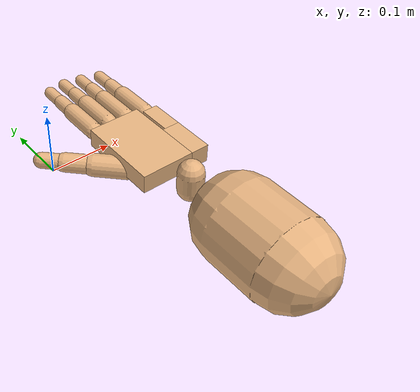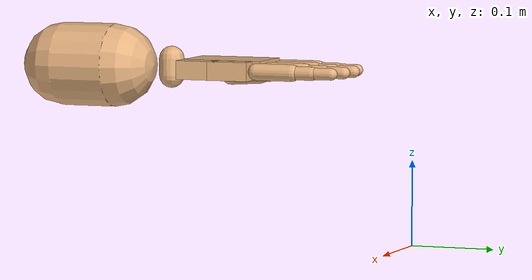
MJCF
<mujoco model="ADROIT-hammer(v1.5)">
    <compiler angle="radian" meshdir="/home/xyl/Projects/differentiable-imitation/human_hand_robot/dependencies/Adroit/resources/meshes" texturedir="/home/xyl/Projects/differentiable-imitation/human_hand_robot/dependencies/Adroit/resources/textures" />
    <default class="main">
        <mesh scale="0.001 0.001 0.001" />
        <joint armature="0.001" damping="0.05" frictionloss="0.001" limited="true" margin="0.01" />
        <geom friction="1 0.5 0.01" margin="0.0005" />
        <site rgba="0.4 0.9 0.4 1" size="0.005 0 0" />
        <tendon limited="true" />
        <general ctrllimited="true" ctrlrange="-1 1" user="0 1 0.03 0.0939711 0.513477 0.0358776 1.23598 8.40409 0.485031 6.04244 1.02187 0.175297 0.121642 0 0 0" />
    </default>
    <default class="board">
        <mesh scale="1 1 1" />
        <joint armature="0" damping="0" frictionloss="0" limited="false" margin="0" />
        <geom friction="1 0.005 0.0001" margin="0" material="MatWood" type="box" />
        <site rgba="0.5 0.5 0.5 1" size="0.005 0.005 0.005" />
        <tendon limited="false" />
        <general ctrllimited="false" ctrlrange="0 0" user="0 1 0.03 0.0939711 0.513477 0.0358776 1.23598 8.40409 0.485031 6.04244 1.02187 0.175297 0.121642 0 0 0" />
    </default>
    <default class="D_Touch">
        <site group="4" rgba="0.8 0.8 0.8 0.15" size="0.009 0.004 0.013" type="box" />
        <general user="0 1 0.03 0.0939711 0.513477 0.0358776 1.23598 8.40409 0.485031 6.04244 1.02187 0.175297 0.121642 0 0 0" />
    </default>
    <default class="DC_Hand">
        <geom conaffinity="0" group="4" material="MatColl" />
        <general user="0 1 0.03 0.0939711 0.513477 0.0358776 1.23598 8.40409 0.485031 6.04244 1.02187 0.175297 0.121642 0 0 0" />
    </default>
    <default class="D_Vizual">
        <geom conaffinity="0" contype="0" group="1" material="MatViz" type="mesh" />
        <general user="0 1 0.03 0.0939711 0.513477 0.0358776 1.23598 8.40409 0.485031 6.04244 1.02187 0.175297 0.121642 0 0 0" />
    </default>
    <default class="free">
        <joint armature="0" damping="0" limited="false" type="free" />
        <general user="0 1 0.03 0.0939711 0.513477 0.0358776 1.23598 8.40409 0.485031 6.04244 1.02187 0.175297 0.121642 0 0 0" />
    </default>
    <asset>
        <texture builtin="flat" height="762" mark="cross" name="texgeom" rgb1="0.3 0.6 0.5" rgb2="0.3 0.6 0.5" type="cube" width="127" />
        <texture file="/home/xyl/Projects/differentiable-imitation/human_hand_robot/dependencies/Adroit/resources/textures/wood.png" name="wood" type="cube" />
        <texture file="/home/xyl/Projects/differentiable-imitation/human_hand_robot/dependencies/Adroit/resources/textures/wood.png" name="wood2d" type="2d" />
        <texture file="/home/xyl/Projects/differentiable-imitation/human_hand_robot/dependencies/Adroit/resources/textures/square.png" name="square" type="cube" />
        <texture file="/home/xyl/Projects/differentiable-imitation/human_hand_robot/dependencies/Adroit/resources/textures/silverRaw.png" name="foil" type="cube" />
        <texture file="/home/xyl/Projects/differentiable-imitation/human_hand_robot/dependencies/Adroit/resources/textures/woodb.png" name="woodb" type="cube" />
        <texture builtin="checker" height="100" name="groundplane" rgb1="0.2 0.3 0.4" rgb2="0.1 0.2 0.3" type="2d" width="100" />
        <texture file="/home/xyl/Projects/differentiable-imitation/human_hand_robot/dependencies/Adroit/resources/textures/marble.png" name="marble2d" type="2d" />
        <texture file="/home/xyl/Projects/differentiable-imitation/human_hand_robot/dependencies/Adroit/resources/textures/marble.png" name="marblecube" type="cube" />
        <material name="MatColl" reflectance="0.5" rgba="0.4 0.5 0.6 1" shininess="0.3" specular="1" />
        <material name="MatViz" reflectance="0.5" rgba="0.9 0.7 0.5 1" shininess="0.1" specular="0.75" />
        <material name="MatGnd" reflectance="0.3" rgba="0.5 0.55 0.5 1" shininess="0.3" specular="0.3" />
        <material name="object" texture="texgeom" />
        <material name="groundplane" texrepeat="10 10" texture="groundplane" />
        <material name="table2d" reflectance="0.3" rgba="0.8 0.8 0.8 1" texture="marble2d" />
        <material name="tablecube" rgba="0.8 0.8 0.8 1" texture="marblecube" />
        <material name="MatFoil" rgba="0.9 0.9 0.9 1" shininess="0.3" specular="1" texture="foil" />
        <material name="MatPlane" rgba="0.3 0.3 0.2 1" shininess="0.3" specular="0.3" />
        <material name="MatWood" shininess="0.1" specular="0.4" texrepeat="3 3" texture="wood" />
        <material name="MatSquare" rgba="0.8 0.8 0.8 1" shininess="0.6" specular="1" texture="square" />
        <material name="MatWoodR" rgba="1 0.5 0.5 1" shininess="0.3" specular="1" texture="wood" />
        <material name="MatWoodG" rgba="0.2 1 0.2 1" shininess="0.3" specular="1" texture="wood" />
        <material name="MatWoodB" shininess="0.3" specular="1" texture="woodb" />
        <mesh file="meshes/forearm_simple.stl" name="forearm_simple" scale="1 1 1" />
        <mesh file="meshes/wrist.stl" name="wrist" />
        <mesh file="meshes/palm.stl" name="palm" />
        <mesh file="meshes/lfmetacarpal.stl" name="lfmetacarpal" />
        <mesh file="meshes/knuckle.stl" name="knuckle" />
        <mesh file="meshes/F3.stl" name="F3" />
        <mesh file="meshes/F2.stl" name="F2" />
        <mesh file="meshes/F1.stl" name="F1" />
        <mesh file="meshes/TH3_z.stl" name="TH3_z" />
        <mesh file="meshes/TH2_z.stl" name="TH2_z" />
        <mesh file="meshes/TH1_z.stl" name="TH1_z" />
    </asset>
    <worldbody>
        <body name="forearm" pos="0 -0.7 0.2" quat="0.000563312 -0.000562864 0.706825 0.707388">
            <inertial diaginertia="0.01 0.01 0.0075" mass="4" pos="0.001 -0.002 0.29" quat="0.982037 -0.0160006 0 -0.188007" />
            <joint axis="1 0 0" damping="20" name="ARRx" pos="0 0 0" range="-0.4 0.25" />
            <joint axis="0 1 0" damping="20" name="ARRy" pos="0 0 0" range="-0.3 0.3" />
            <geom class="DC_Hand" name="C_forearm1" pos="0 0 0.29" rgba="0.4 0.5 0.6 0.1" size="0.05 0.033" type="capsule" />
            <geom class="D_Vizual" name="V_forearm1" pos="0 0 0.29" size="0.05 0.033" type="capsule" />
            <body name="wrist" pos="0 0 0.396">
                <inertial diaginertia="0.001 0.001 0.001" mass="0.3" pos="0.003 0 0.016" quat="0.504234 0.49623 0.49523 0.504234" />
                <joint armature="0.005" axis="0 1 0" damping="0.5" name="WRJ1" pos="0 0 0" range="-0.524 0.175" user="1123" />
                <geom class="DC_Hand" name="C_wrist" quat="0.707107 0.707107 0 0" rgba="0.4 0.5 0.6 0.1" size="0.015 0.01" type="capsule" />
                <geom class="D_Vizual" name="V_wrist" quat="0.707107 0.707107 0 0" size="0.015 0.01" type="capsule" />
                <body name="palm" pos="0 0 0.034">
                    <inertial diaginertia="0.001 0.001 0.001" mass="0.3" pos="0.006 0 0.036" quat="0.715833 0.0439898 0.0749825 0.692839" />
                    <joint armature="0.005" axis="1 0 0" damping="0.5" name="WRJ0" pos="0 0 0" range="-0.785 0.611" user="1122" />
                    <geom class="DC_Hand" name="C_palm0" pos="0.011 0 0.038" rgba="0.4 0.5 0.6 0.1" size="0.032 0.0111 0.049" type="box" />
                    <geom class="D_Vizual" name="V_palm0" pos="0.011 0 0.038" size="0.032 0.0111 0.049" type="box" />
                    <geom class="D_Vizual" name="V_palm1" pos="-0.032 0 0.014" size="0.011 0.0111 0.025" type="box" />
                    <geom class="DC_Hand" name="C_palm1" pos="-0.032 0 0.014" rgba="0.4 0.5 0.6 0.1" size="0.011 0.0111 0.025" type="box" />
                    <site name="S_grasp" pos="0.007 -0.05 0.07" quat="0.00863043 -0.595202 -0.00337281 -0.803523" rgba="0 0 0 0" size="0.01" />
                    <site class="D_Touch" name="Tch_ffmetacarpal" pos="0.033 -0.008 0.078" size="0.009 0.004 0.006" />
                    <site class="D_Touch" name="Tch_mfmetacarpal" pos="0.011 -0.008 0.074" size="0.009 0.004 0.014" />
                    <site class="D_Touch" name="Tch_rfmetacarpal" pos="-0.011 -0.008 0.068" size="0.009 0.004 0.016" />
                    <site class="D_Touch" name="Tch_thmetacarpal" pos="0.006 -0.008 0.042" quat="0.959662 0 0.281157 0" size="0.008 0.004 0.015" />
                    <site class="D_Touch" name="Tch_palm" pos="-0.017 -0.008 0.024" quat="0.877583 0 -0.479426 0" size="0.012 0.004 0.016" />
                    <body name="ffknuckle" pos="0.033 0.0 0.095">
                        <inertial diaginertia="1e-05 1e-05 1e-05" mass="0.008" pos="0 0 0" quat="0.520062 0.854102 0.00600072 -0.00300036" />
                        <joint axis="0 1 0" name="FFJ3" pos="0 0 0" range="-0.436 0.436" user="1103" />
                        <body name="ffproximal" pos="0 0 0">
                            <inertial diaginertia="1e-05 1e-05 1e-05" mass="0.014" pos="0 0 0.023" quat="0.707095 -0.00400054 0.00400054 0.707095" />
                            <joint axis="1 0 0" name="FFJ2" pos="0 0 0" range="0.0 1.571" user="1102" />
                            <geom class="DC_Hand" name="C_ffproximal" pos="0 0 0.0225" size="0.01 0.0225" type="capsule" />
                            <geom class="D_Vizual" name="V_ffproximal" pos="0 0 0.0225" size="0.01 0.0225" type="capsule" />
                            <site class="D_Touch" name="Tch_ffproximal" pos="0 -0.007 0.022" size="0.009 0.004 0.012" />
                            <body name="ffmiddle" pos="0 0 0.045">
                                <inertial diaginertia="1e-05 1e-05 1e-05" mass="0.012" pos="0 0 0.011" quat="0.707107 0 0 0.707107" />
                                <joint axis="1 0 0" name="FFJ1" pos="0 0 0" range="0.0 1.571" user="1101" />
                                <geom class="DC_Hand" name="C_ffmiddle" pos="0 0 0.0125" size="0.00805 0.0125" type="capsule" />
                                <geom class="D_Vizual" name="V_ffmiddle" pos="0 0 0.0125" size="0.00805 0.0125" type="capsule" />
                                <site class="D_Touch" name="Tch_ffmiddle" pos="0 -0.007 0.013" size="0.009 0.002 0.007" />
                                <body name="ffdistal" pos="0 0 0.025">
                                    <inertial diaginertia="1e-05 1e-05 1e-05" mass="0.01" pos="0 0 0.015" quat="0.7071 -0.00300043 0.00300043 0.7071" />
                                    <joint axis="1 0 0" name="FFJ0" pos="0 0 0" range="0.0 1.571" user="1100" />
                                    <geom class="DC_Hand" condim="4" name="C_ffdistal" pos="0 0 0.012" size="0.00705 0.012" type="capsule" />
                                    <geom class="D_Vizual" condim="4" name="V_ffdistal" pos="0 0 0.012" size="0.00705 0.012" type="capsule" />
                                    <site group="3" name="S_fftip" pos="0 0 0.026" />
                                    <site class="D_Touch" name="Tch_fftip" pos="0 -0.004 0.018" />
                                </body>
                            </body>
                        </body>
                    </body>
                    <body name="mfknuckle" pos="0.011 0 0.099">
                        <inertial diaginertia="1e-05 1e-05 1e-05" mass="0.008" pos="0 0 0" quat="0.520062 0.854102 0.00600072 -0.00300036" />
                        <joint axis="0 1 0" name="MFJ3" pos="0 0 0" range="-0.436 0.436" user="1107" />
                        <body name="mfproximal" pos="0 0 0">
                            <inertial diaginertia="1e-05 1e-05 1e-05" mass="0.014" pos="0 0 0.023" quat="0.707095 -0.00400054 0.00400054 0.707095" />
                            <joint axis="1 0 0" name="MFJ2" pos="0 0 0.0" range="0 1.571" user="1106" />
                            <geom class="DC_Hand" name="C_mfproximal" pos="0 0 0.0225" size="0.01 0.0225" type="capsule" />
                            <geom class="D_Vizual" name="V_mfproximal" pos="0 0 0.0225" size="0.01 0.0225" type="capsule" />
                            <site class="D_Touch" name="Tch_mfproximal" pos="0 -0.007 0.022" size="0.009 0.004 0.012" />
                            <body name="mfmiddle" pos="0 0 0.045">
                                <inertial diaginertia="1e-05 1e-05 1e-05" mass="0.012" pos="0 0 0.012" quat="0.707107 0 0 0.707107" />
                                <joint axis="1 0 0" name="MFJ1" pos="0 0 0.0" range="0 1.571" user="1105" />
                                <geom class="DC_Hand" name="C_mfmiddle" pos="0 0 0.0125" size="0.00805 0.0125" type="capsule" />
                                <geom class="D_Vizual" name="V_mfmiddle" pos="0 0 0.0125" size="0.00805 0.0125" type="capsule" />
                                <site class="D_Touch" name="Tch_mfmiddle" pos="0 -0.007 0.013" size="0.009 0.002 0.007" />
                                <body name="mfdistal" pos="0 0 0.025">
                                    <inertial diaginertia="1e-05 1e-05 1e-05" mass="0.01" pos="0 0 0.015" quat="0.7071 -0.00300043 0.00300043 0.7071" />
                                    <joint axis="1 0 0" name="MFJ0" pos="0 0 0.0" range="0 1.571" user="1104" />
                                    <geom class="DC_Hand" condim="4" name="C_mfdistal" pos="0 0 0.012" size="0.00705 0.012" type="capsule" />
                                    <geom class="D_Vizual" condim="4" name="V_mfdistal" pos="0 0 0.012" size="0.00705 0.012" type="capsule" />
                                    <site group="3" name="S_mftip" pos="0 0 0.026" />
                                    <site class="D_Touch" name="Tch_mftip" pos="0 -0.004 0.018" />
                                </body>
                            </body>
                        </body>
                    </body>
                    <body name="rfknuckle" pos="-0.011 0 0.095">
                        <inertial diaginertia="1e-05 1e-05 1e-05" mass="0.008" pos="0 0 0" quat="0.520062 0.854102 0.00600072 -0.00300036" />
                        <joint axis="0 1 0" name="RFJ3" pos="0 0 0" range="-0.436 0.436" user="1111" />
                        <body name="rfproximal" pos="0 0 0">
                            <inertial diaginertia="1e-05 1e-05 1e-05" mass="0.014" pos="0 0 0.023" quat="0.707095 -0.00400054 0.00400054 0.707095" />
                            <joint axis="1 0 0" name="RFJ2" pos="0 0 0.0" range="0 1.571" user="1110" />
                            <geom class="DC_Hand" name="C_rfproximal" pos="0 0 0.0225" size="0.01 0.0225" type="capsule" />
                            <geom class="D_Vizual" name="V_rfproximal" pos="0 0 0.0225" size="0.01 0.0225" type="capsule" />
                            <site class="D_Touch" name="Tch_rfproximal" pos="0 -0.007 0.022" size="0.009 0.004 0.012" />
                            <body name="rfmiddle" pos="0 0 0.045">
                                <inertial diaginertia="1e-05 1e-05 1e-05" mass="0.012" pos="0 0 0.012" quat="0.707107 0 0 0.707107" />
                                <joint axis="1 0 0" name="RFJ1" pos="0 0 0.0" range="0 1.571" user="1109" />
                                <geom class="DC_Hand" name="C_rfmiddle" pos="0 0 0.0125" size="0.00805 0.0125" type="capsule" />
                                <geom class="D_Vizual" name="V_rfmiddle" pos="0 0 0.0125" size="0.00805 0.0125" type="capsule" />
                                <site class="D_Touch" name="Tch_rfmiddle" pos="0 -0.007 0.013" size="0.009 0.002 0.007" />
                                <body name="rfdistal" pos="0 0 0.025">
                                    <inertial diaginertia="1e-05 1e-05 1e-05" mass="0.01" pos="0 0 0.015" quat="0.7071 -0.00300043 0.00300043 0.7071" />
                                    <joint axis="1 0 0" name="RFJ0" pos="0 0 0.0" range="0 1.571" user="1108" />
                                    <geom class="DC_Hand" condim="4" name="C_rfdistal" pos="0 0 0.012" size="0.00705 0.012" type="capsule" />
                                    <geom class="D_Vizual" condim="4" name="V_rfdistal" pos="0 0 0.012" size="0.00705 0.012" type="capsule" />
                                    <site group="3" name="S_rftip" pos="0 0 0.026" />
                                    <site class="D_Touch" name="Tch_rftip" pos="0 -0.004 0.018" />
                                </body>
                            </body>
                        </body>
                    </body>
                    <body name="lfmetacarpal" pos="-0.017 0 0.044">
                        <inertial diaginertia="1e-05 1e-05 1e-05" mass="0.075" pos="-0.014 0.001 0.014" quat="0.709167 -0.0920216 -0.0630148 0.696164" />
                        <joint axis="0.570977 0 0.820966" name="LFJ4" pos="0 0 0" range="0.0 0.698" user="1116" />
                        <geom class="DC_Hand" name="C_lfmetacarpal" pos="-0.0165 0 0.01" rgba="0.4 0.5 0.6 0.2" size="0.0095 0.0111 0.025" type="box" />
                        <geom class="D_Vizual" name="V_lfmetacarpal" pos="-0.0165 0 0.01" size="0.0095 0.0111 0.025" type="box" />
                        <site class="D_Touch" name="Tch_lfmetacarpal" pos="-0.016 -0.008 0.017" size="0.009 0.004 0.014" />
                        <body name="lfknuckle" pos="-0.017 0 0.044">
                            <inertial diaginertia="1e-05 1e-05 1e-05" mass="0.008" pos="0 0 0" quat="0.520062 0.854102 0.00600072 -0.00300036" />
                            <joint axis="0 1 0" name="LFJ3" pos="0 0 0" range="-0.436 0.436" user="1115" />
                            <body name="lfproximal" pos="0 0 0">
                                <inertial diaginertia="1e-05 1e-05 1e-05" mass="0.014" pos="0 0 0.023" quat="0.707095 -0.00400054 0.00400054 0.707095" />
                                <joint axis="1 0 0" name="LFJ2" pos="0 0 0.0" range="0 1.571" user="1114" />
                                <geom class="DC_Hand" name="C_lfproximal" pos="0 0 0.0225" size="0.01 0.0225" type="capsule" />
                                <geom class="D_Vizual" name="V_lfproximal" pos="0 0 0.0225" size="0.01 0.0225" type="capsule" />
                                <site class="D_Touch" name="Tch_lfproximal" pos="0 -0.007 0.022" size="0.009 0.004 0.012" />
                                <body name="lfmiddle" pos="0 0 0.045">
                                    <inertial diaginertia="1e-05 1e-05 1e-05" mass="0.012" pos="0 0 0.012" quat="0.707107 0 0 0.707107" />
                                    <joint axis="1 0 0" name="LFJ1" pos="0 0 0.0" range="0 1.571" user="1113" />
                                    <geom class="DC_Hand" name="C_lfmiddle" pos="0 0 0.0125" size="0.00805 0.0125" type="capsule" />
                                    <geom class="D_Vizual" name="V_lfmiddle" pos="0 0 0.0125" size="0.00805 0.0125" type="capsule" />
                                    <site class="D_Touch" name="Tch_lfmiddle" pos="0 -0.007 0.013" size="0.009 0.002 0.007" />
                                    <body name="lfdistal" pos="0 0 0.025">
                                        <inertial diaginertia="1e-05 1e-05 1e-05" mass="0.01" pos="0 0 0.015" quat="0.7071 -0.00300043 0.00300043 0.7071" />
                                        <joint axis="1 0 0" name="LFJ0" pos="0 0 0.0" range="0 1.571" user="1112" />
                                        <geom class="DC_Hand" condim="4" name="C_lfdistal" pos="0 0 0.012" size="0.00705 0.012" type="capsule" />
                                        <geom class="D_Vizual" condim="4" name="V_lfdistal" pos="0 0 0.012" size="0.00705 0.012" type="capsule" />
                                        <site group="3" name="S_lftip" pos="0 0 0.026" />
                                        <site class="D_Touch" name="Tch_lftip" pos="0 -0.004 0.018" />
                                    </body>
                                </body>
                            </body>
                        </body>
                    </body>
                    <body name="thbase" pos="0.034 -0.009 0.029" quat="0.9239559191829652 0.0 0.38249896654339055 0.0">
                        <inertial diaginertia="1e-05 1e-05 1e-05" mass="0.01" pos="0 0 0" />
                        <joint axis="0 0 -1" name="THJ4" pos="0 0 0" range="-1.047 1.047" user="1121" />
                        <body name="thproximal" pos="0 0 0">
                            <inertial diaginertia="1e-05 1e-05 1e-05" mass="0.016" pos="0 0 0.017" quat="0.981604 0 0.000999597 0.190923" />
                            <joint axis="1 0 0" name="THJ3" pos="0 0 0" range="0.0 1.309" user="1120" />
                            <geom class="DC_Hand" name="C_thproximal" pos="0 0 0.019" rgba="0.4 0.5 0.6 0.1" size="0.013 0.019" type="capsule" />
                            <geom class="D_Vizual" name="V_thproximal" pos="0 0 0.019" size="0.013 0.019" type="capsule" />
                            <site class="D_Touch" name="Tch_thproximal" pos="-0.008 0 0.022" size="0.005 0.011 0.011" />
                            <body name="thhub" pos="0 0 0.038">
                                <inertial diaginertia="1e-05 1e-05 1e-05" mass="0.002" pos="0 0 0" />
                                <joint axis="1 0 0" name="THJ2" pos="0 0 0" range="-0.262 0.262" user="1119" />
                                <body name="thmiddle" pos="0 0 0">
                                    <inertial diaginertia="1e-05 1e-05 1e-05" mass="0.016" pos="0 0 0.016" quat="0.999971 -0.000999971 -0.00699979 0.00299991" />
                                    <joint axis="0 1 0" name="THJ1" pos="0 0 0" range="-0.524 0.524" user="1118" />
                                    <geom class="DC_Hand" name="C_thmiddle" pos="0 0 0.016" size="0.011 0.016" type="capsule" />
                                    <geom class="D_Vizual" name="V_thmiddle" pos="0 0 0.016" size="0.011 0.016" type="capsule" />
                                    <site class="D_Touch" name="Tch_thmiddle" pos="-0.008 0 0.018" size="0.005 0.011 0.011" />
                                    <body name="thdistal" pos="0 0 0.032">
                                        <inertial diaginertia="1e-05 1e-05 1e-05" mass="0.016" pos="0 0 0.016" quat="0.99887 -0.00499935 -0.0469939 0.00499935" />
                                        <joint axis="0 1 0" name="THJ0" pos="0 0 0" range="-1.571 0.0" user="1117" />
                                        <geom class="DC_Hand" condim="4" name="C_thdistal" pos="0 0 0.013" size="0.00918 0.013" type="capsule" />
                                        <geom class="D_Vizual" condim="4" name="V_thdistal" pos="0 0 0.013" size="0.00918 0.013" type="capsule" />
                                        <site group="3" name="S_thtip" pos="0 0 0.0275" />
                                        <site class="D_Touch" name="Tch_thtip" pos="-0.005 0 0.02" size="0.005 0.011 0.016" />
                                    </body>
                                </body>
                            </body>
                        </body>
                    </body>
                </body>
            </body>
        </body>
    </worldbody>
    <contact>
        <pair condim="1" geom1="C_palm0" geom2="C_thdistal" />
        <pair condim="1" geom1="C_ffproximal" geom2="C_mfproximal" />
        <pair condim="1" geom1="C_ffproximal" geom2="C_thdistal" />
        <pair condim="1" geom1="C_ffmiddle" geom2="C_thdistal" />
        <pair condim="1" geom1="C_ffdistal" geom2="C_mfdistal" />
        <pair condim="1" geom1="C_ffdistal" geom2="C_thdistal" />
        <pair condim="1" geom1="C_mfproximal" geom2="C_rfproximal" />
        <pair condim="1" geom1="C_mfproximal" geom2="C_thdistal" />
        <pair condim="1" geom1="C_mfdistal" geom2="C_rfdistal" />
        <pair condim="1" geom1="C_mfdistal" geom2="C_lfdistal" />
        <pair condim="1" geom1="C_mfdistal" geom2="C_thdistal" />
        <pair condim="1" geom1="C_rfproximal" geom2="C_lfproximal" />
        <pair condim="1" geom1="C_rfmiddle" geom2="C_lfmiddle" />
        <pair condim="1" geom1="C_rfmiddle" geom2="C_lfdistal" />
        <pair condim="1" geom1="C_rfdistal" geom2="C_lfmiddle" />
        <pair condim="1" geom1="C_rfdistal" geom2="C_lfdistal" />
        <pair condim="1" geom1="C_rfdistal" geom2="C_lfdistal" />
        <pair condim="1" geom1="C_rfdistal" geom2="C_thdistal" />
        <pair condim="1" geom1="C_lfdistal" geom2="C_thdistal" />
    </contact>
    <tendon>
        <fixed name="T_WRJ1r" range="-0.032 0.032" user="1236">
            <joint coef="0.018" joint="WRJ1" />
        </fixed>
        <fixed name="T_WRJ1l" range="-0.032 0.032" user="1237">
            <joint coef="-0.018" joint="WRJ1" />
        </fixed>
        <fixed name="T_WRJ0u" range="-0.032 0.032" user="1236">
            <joint coef="0.018" joint="WRJ0" />
        </fixed>
        <fixed name="T_WRJ0d" range="-0.032 0.032" user="1237">
            <joint coef="-0.018" joint="WRJ0" />
        </fixed>
        <fixed name="T_FFJ3r" range="-0.018 0.018" user="1204">
            <joint coef="0.01" joint="FFJ3" />
        </fixed>
        <fixed name="T_FFJ3l" range="-0.018 0.018" user="1205">
            <joint coef="-0.01" joint="FFJ3" />
        </fixed>
        <fixed name="T_FFJ2u" range="-0.007 0.03" user="1202">
            <joint coef="0.01" joint="FFJ2" />
        </fixed>
        <fixed name="T_FFJ2d" range="-0.03 0.007" user="1203">
            <joint coef="-0.01" joint="FFJ2" />
        </fixed>
        <fixed name="T_FFJ1c" range="-0.001 0.001">
            <joint coef="0.00705" joint="FFJ0" />
            <joint coef="-0.00805" joint="FFJ1" />
        </fixed>
        <fixed name="T_FFJ1u" range="-0.007 0.03" user="1200">
            <joint coef="0.00705" joint="FFJ0" />
            <joint coef="0.00805" joint="FFJ1" />
        </fixed>
        <fixed name="T_FFJ1d" range="-0.03 0.007" user="1201">
            <joint coef="-0.00705" joint="FFJ0" />
            <joint coef="-0.00805" joint="FFJ1" />
        </fixed>
        <fixed name="T_MFJ3r" range="-0.018 0.018" user="1210">
            <joint coef="0.01" joint="MFJ3" />
        </fixed>
        <fixed name="T_MFJ3l" range="-0.018 0.018" user="1211">
            <joint coef="-0.01" joint="MFJ3" />
        </fixed>
        <fixed name="T_MFJ2u" range="-0.007 0.03" user="1208">
            <joint coef="0.01" joint="MFJ2" />
        </fixed>
        <fixed name="T_MFJ2d" range="-0.03 0.007" user="1209">
            <joint coef="-0.01" joint="MFJ2" />
        </fixed>
        <fixed name="T_MFJ1c" range="-0.001 0.001">
            <joint coef="0.00705" joint="MFJ0" />
            <joint coef="-0.00805" joint="MFJ1" />
        </fixed>
        <fixed name="T_MFJ1u" range="-0.007 0.03" user="1206">
            <joint coef="0.00705" joint="MFJ0" />
            <joint coef="0.00805" joint="MFJ1" />
        </fixed>
        <fixed name="T_MFJ1d" range="-0.03 0.007" user="1207">
            <joint coef="-0.00705" joint="MFJ0" />
            <joint coef="-0.00805" joint="MFJ1" />
        </fixed>
        <fixed name="T_RFJ3r" range="-0.018 0.018" user="1216">
            <joint coef="0.01" joint="RFJ3" />
        </fixed>
        <fixed name="T_RFJ3l" range="-0.018 0.018" user="1217">
            <joint coef="-0.01" joint="RFJ3" />
        </fixed>
        <fixed name="T_RFJ2u" range="-0.007 0.03" user="1214">
            <joint coef="0.01" joint="RFJ2" />
        </fixed>
        <fixed name="T_RFJ2d" range="-0.03 0.007" user="1215">
            <joint coef="-0.01" joint="RFJ2" />
        </fixed>
        <fixed name="T_RFJ1c" range="-0.001 0.001">
            <joint coef="0.00705" joint="RFJ0" />
            <joint coef="-0.00805" joint="RFJ1" />
        </fixed>
        <fixed name="T_RFJ1u" range="-0.007 0.03" user="1212">
            <joint coef="0.00705" joint="RFJ0" />
            <joint coef="0.00805" joint="RFJ1" />
        </fixed>
        <fixed name="T_RFJ1d" range="-0.03 0.007" user="1213">
            <joint coef="-0.00705" joint="RFJ0" />
            <joint coef="-0.00805" joint="RFJ1" />
        </fixed>
        <fixed name="T_LFJ4u" range="-0.007 0.03" user="1224">
            <joint coef="0.01" joint="LFJ4" />
        </fixed>
        <fixed name="T_LFJ4d" range="-0.03 0.007" user="1225">
            <joint coef="-0.01" joint="LFJ4" />
        </fixed>
        <fixed name="T_LFJ3r" range="-0.018 0.018" user="1222">
            <joint coef="0.01" joint="LFJ3" />
        </fixed>
        <fixed name="T_LFJ3l" range="-0.018 0.018" user="1223">
            <joint coef="-0.01" joint="LFJ3" />
        </fixed>
        <fixed name="T_LFJ2u" range="-0.007 0.03" user="1220">
            <joint coef="0.01" joint="LFJ2" />
        </fixed>
        <fixed name="T_LFJ2d" range="-0.03 0.007" user="1221">
            <joint coef="-0.01" joint="LFJ2" />
        </fixed>
        <fixed name="T_LFJ1c" range="-0.001 0.001">
            <joint coef="0.00705" joint="LFJ0" />
            <joint coef="-0.00805" joint="LFJ1" />
        </fixed>
        <fixed name="T_LFJ1u" range="-0.007 0.03" user="1218">
            <joint coef="0.00705" joint="LFJ0" />
            <joint coef="0.00805" joint="LFJ1" />
        </fixed>
        <fixed name="T_LFJ1d" range="-0.03 0.007" user="1219">
            <joint coef="-0.00705" joint="LFJ0" />
            <joint coef="-0.00805" joint="LFJ1" />
        </fixed>
        <fixed name="T_THJ4a" range="-0.018 0.018" user="1234">
            <joint coef="0.01636" joint="THJ4" />
        </fixed>
        <fixed name="T_THJ4c" range="-0.018 0.018" user="1235">
            <joint coef="-0.01636" joint="THJ4" />
        </fixed>
        <fixed name="T_THJ3u" range="-0.007 0.03" user="1232">
            <joint coef="0.01" joint="THJ3" />
        </fixed>
        <fixed name="T_THJ3d" range="-0.03 0.007" user="1233">
            <joint coef="-0.01" joint="THJ3" />
        </fixed>
        <fixed name="T_THJ2u" range="-0.018 0.018" user="1230">
            <joint coef="0.011" joint="THJ2" />
        </fixed>
        <fixed name="T_THJ2d" range="-0.018 0.018" user="1231">
            <joint coef="-0.011" joint="THJ2" />
        </fixed>
        <fixed name="T_THJ1r" range="-0.018 0.018" user="1228">
            <joint coef="0.011" joint="THJ1" />
        </fixed>
        <fixed name="T_THJ1l" range="-0.018 0.018" user="1229">
            <joint coef="-0.011" joint="THJ1" />
        </fixed>
        <fixed name="T_THJ0r" range="-0.03 0.007" user="1226">
            <joint coef="0.009" joint="THJ0" />
        </fixed>
        <fixed name="T_THJ0l" range="-0.007 0.03" user="1227">
            <joint coef="-0.009" joint="THJ0" />
        </fixed>
    </tendon>
    <actuator>
        <general biasprm="0 -200 0 0 0 0 0 0 0 0" biastype="affine" ctrlrange="-0.4 0.25" gainprm="500 0 0 0 0 0 0 0 0 0" joint="ARRx" name="A_ARRx" user="1002 0 2001 -0.02 0.02 0 0 0 0 0 0 0 0 0 0 0" />
        <general biasprm="0 -200 0 0 0 0 0 0 0 0" biastype="affine" ctrlrange="-0.3 0.3" gainprm="500 0 0 0 0 0 0 0 0 0" joint="ARRy" name="A_ARRy" />
        <general biasprm="0 -10 0 0 0 0 0 0 0 0" biastype="affine" ctrlrange="-0.524 0.175" gainprm="10 0 0 0 0 0 0 0 0 0" joint="WRJ1" name="A_WRJ1" user="1002 0 2001 -0.02 0.02 0 0 0 0 0 0 0 0 0 0 0" />
        <general biasprm="0 -10 0 0 0 0 0 0 0 0" biastype="affine" ctrlrange="-0.79 0.61" gainprm="10 0 0 0 0 0 0 0 0 0" joint="WRJ0" name="A_WRJ0" user="1002 0 2001 -0.02 0.02 0 0 0 0 0 0 0 0 0 0 0" />
        <general biasprm="0 -1 0 0 0 0 0 0 0 0" biastype="affine" ctrlrange="-0.44 0.44" joint="FFJ3" name="A_FFJ3" user="1002 0 2001 -0.1 0.1 0 0 0 0 0 0 0 0 0 0 0" />
        <general biasprm="0 -1 0 0 0 0 0 0 0 0" biastype="affine" ctrlrange="0.0 1.6" joint="FFJ2" name="A_FFJ2" user="1002 0 2001 -0.1 0.1 0 0 0 0 0 0 0 0 0 0 0" />
        <general biasprm="0 -1 0 0 0 0 0 0 0 0" biastype="affine" ctrlrange="0 1.6" joint="FFJ1" name="A_FFJ1" user="1002 0 2001 -0.1 0.1 0 0 0 0 0 0 0 0 0 0 0" />
        <general biasprm="0 -1 0 0 0 0 0 0 0 0" biastype="affine" ctrlrange="0 1.6" joint="FFJ0" name="A_FFJ0" user="1002 0 2001 -0.1 0.1 0 0 0 0 0 0 0 0 0 0 0" />
        <general biasprm="0 -1 0 0 0 0 0 0 0 0" biastype="affine" ctrlrange="-0.44 0.44" joint="MFJ3" name="A_MFJ3" user="1002 0 2001 -0.1 0.1 0 0 0 0 0 0 0 0 0 0 0" />
        <general biasprm="0 -1 0 0 0 0 0 0 0 0" biastype="affine" ctrlrange="0 1.6" joint="MFJ2" name="A_MFJ2" user="1002 0 2001 -0.1 0.1 0 0 0 0 0 0 0 0 0 0 0" />
        <general biasprm="0 -1 0 0 0 0 0 0 0 0" biastype="affine" ctrlrange="0 1.6" joint="MFJ1" name="A_MFJ1" user="1002 0 2001 -0.1 0.1 0 0 0 0 0 0 0 0 0 0 0" />
        <general biasprm="0 -1 0 0 0 0 0 0 0 0" biastype="affine" ctrlrange="0 1.6" joint="MFJ0" name="A_MFJ0" user="1002 0 2001 -0.1 0.1 0 0 0 0 0 0 0 0 0 0 0" />
        <general biasprm="0 -1 0 0 0 0 0 0 0 0" biastype="affine" ctrlrange="-0.44 0.44" joint="RFJ3" name="A_RFJ3" user="1002 0 2001 -0.1 0.1 0 0 0 0 0 0 0 0 0 0 0" />
        <general biasprm="0 -1 0 0 0 0 0 0 0 0" biastype="affine" ctrlrange="0 1.6" joint="RFJ2" name="A_RFJ2" user="1002 0 2001 -0.1 0.1 0 0 0 0 0 0 0 0 0 0 0" />
        <general biasprm="0 -1 0 0 0 0 0 0 0 0" biastype="affine" ctrlrange="0 1.6" joint="RFJ1" name="A_RFJ1" user="1002 0 2001 -0.1 0.1 0 0 0 0 0 0 0 0 0 0 0" />
        <general biasprm="0 -1 0 0 0 0 0 0 0 0" biastype="affine" ctrlrange="0 1.6" joint="RFJ0" name="A_RFJ0" user="1002 0 2001 -0.1 0.1 0 0 0 0 0 0 0 0 0 0 0" />
        <general biasprm="0 -1 0 0 0 0 0 0 0 0" biastype="affine" ctrlrange="0 0.7" joint="LFJ4" name="A_LFJ4" user="1002 0 2001 -0.1 0.1 0 0 0 0 0 0 0 0 0 0 0" />
        <general biasprm="0 -1 0 0 0 0 0 0 0 0" biastype="affine" ctrlrange="-0.44 0.44" joint="LFJ3" name="A_LFJ3" user="1002 0 2001 -0.1 0.1 0 0 0 0 0 0 0 0 0 0 0" />
        <general biasprm="0 -1 0 0 0 0 0 0 0 0" biastype="affine" ctrlrange="0 1.6" joint="LFJ2" name="A_LFJ2" user="1002 0 2001 -0.1 0.1 0 0 0 0 0 0 0 0 0 0 0" />
        <general biasprm="0 -1 0 0 0 0 0 0 0 0" biastype="affine" ctrlrange="0 1.6" joint="LFJ1" name="A_LFJ1" user="1002 0 2001 -0.1 0.1 0 0 0 0 0 0 0 0 0 0 0" />
        <general biasprm="0 -1 0 0 0 0 0 0 0 0" biastype="affine" ctrlrange="0 1.6" joint="LFJ0" name="A_LFJ0" user="1002 0 2001 -0.1 0.1 0 0 0 0 0 0 0 0 0 0 0" />
        <general biasprm="0 -1 0 0 0 0 0 0 0 0" biastype="affine" joint="THJ4" name="A_THJ4" user="1002 0 2001 -0.1 0.1 0 0 0 0 0 0 0 0 0 0 0" />
        <general biasprm="0 -1 0 0 0 0 0 0 0 0" biastype="affine" ctrlrange="0.0 1.3" joint="THJ3" name="A_THJ3" user="1002 0 2001 -0.1 0.1 0 0 0 0 0 0 0 0 0 0 0" />
        <general biasprm="0 -1 0 0 0 0 0 0 0 0" biastype="affine" ctrlrange="-0.26 0.26" joint="THJ2" name="A_THJ2" user="1002 0 2001 -0.1 0.1 0 0 0 0 0 0 0 0 0 0 0" />
        <general biasprm="0 -1 0 0 0 0 0 0 0 0" biastype="affine" ctrlrange="-0.52 0.52" joint="THJ1" name="A_THJ1" user="1002 0 2001 -0.1 0.1 0 0 0 0 0 0 0 0 0 0 0" />
        <general biasprm="0 -1 0 0 0 0 0 0 0 0" biastype="affine" ctrlrange="-1.571 0" joint="THJ0" name="A_THJ0" user="1002 0 2001 -0.1 0.1 0 0 0 0 0 0 0 0 0 0 0" />
    </actuator>
    <sensor>
        <actuatorfrc actuator="A_WRJ1" name="Saf_A_WRJ1" />
        <actuatorfrc actuator="A_WRJ0" name="Saf_A_WRJ0" />
        <actuatorfrc actuator="A_FFJ3" name="Saf_A_FFJ3" />
        <actuatorfrc actuator="A_FFJ2" name="Saf_A_FFJ2" />
        <actuatorfrc actuator="A_FFJ1" name="Saf_A_FFJ1" />
        <actuatorfrc actuator="A_MFJ3" name="Saf_A_MFJ3" />
        <actuatorfrc actuator="A_MFJ2" name="Saf_A_MFJ2" />
        <actuatorfrc actuator="A_MFJ1" name="Saf_A_MFJ1" />
        <actuatorfrc actuator="A_RFJ3" name="Saf_A_RFJ3" />
        <actuatorfrc actuator="A_RFJ2" name="Saf_A_RFJ2" />
        <actuatorfrc actuator="A_RFJ1" name="Saf_A_RFJ1" />
        <actuatorfrc actuator="A_LFJ4" name="Saf_A_LFJ4" />
        <actuatorfrc actuator="A_LFJ3" name="Saf_A_LFJ3" />
        <actuatorfrc actuator="A_LFJ2" name="Saf_A_LFJ2" />
        <actuatorfrc actuator="A_LFJ1" name="Saf_A_LFJ1" />
        <actuatorfrc actuator="A_THJ4" name="Saf_A_THJ4" />
        <actuatorfrc actuator="A_THJ3" name="Saf_A_THJ3" />
        <actuatorfrc actuator="A_THJ2" name="Saf_A_THJ2" />
        <actuatorfrc actuator="A_THJ1" name="Saf_A_THJ1" />
        <actuatorfrc actuator="A_THJ0" name="Saf_A_THJ0" />
        <touch name="ST_Tch_fftip" site="Tch_fftip" />
        <touch name="ST_Tch_mftip" site="Tch_mftip" />
        <touch name="ST_Tch_rftip" site="Tch_rftip" />
        <touch name="ST_Tch_lftip" site="Tch_lftip" />
        <touch name="ST_Tch_thtip" site="Tch_thtip" />
        <touch name="ST_Tch_ffmiddle" site="Tch_ffmiddle" />
        <touch name="ST_Tch_mfmiddle" site="Tch_mfmiddle" />
        <touch name="ST_Tch_rfmiddle" site="Tch_rfmiddle" />
        <touch name="ST_Tch_lfmiddle" site="Tch_lfmiddle" />
        <touch name="ST_Tch_thmiddle" site="Tch_thmiddle" />
        <touch name="ST_Tch_ffproximal" site="Tch_ffproximal" />
        <touch name="ST_Tch_mfproximal" site="Tch_mfproximal" />
        <touch name="ST_Tch_rfproximal" site="Tch_rfproximal" />
        <touch name="ST_Tch_lfproximal" site="Tch_lfproximal" />
        <touch name="ST_Tch_thproximal" site="Tch_thproximal" />
        <touch name="ST_Tch_ffmetacarpal" site="Tch_ffmetacarpal" />
        <touch name="ST_Tch_mfmetacarpal" site="Tch_mfmetacarpal" />
        <touch name="ST_Tch_rfmetacarpal" site="Tch_rfmetacarpal" />
        <touch name="ST_Tch_lfmetacarpal" site="Tch_lfmetacarpal" />
        <touch name="ST_Tch_thmetacarpal" site="Tch_thmetacarpal" />
        <touch name="ST_Tch_palm" site="Tch_palm" />
        <jointpos joint="WRJ1" name="Sjp_WRJ1" />
        <jointpos joint="WRJ0" name="Sjp_WRJ0" />
        <jointpos joint="FFJ3" name="Sjp_FFJ3" />
        <jointpos joint="FFJ2" name="Sjp_FFJ2" />
        <jointpos joint="FFJ1" name="Sjp_FFJ1" />
        <jointpos joint="FFJ0" name="Sjp_FFJ0" />
        <jointpos joint="MFJ3" name="Sjp_MFJ3" />
        <jointpos joint="MFJ2" name="Sjp_MFJ2" />
        <jointpos joint="MFJ1" name="Sjp_MFJ1" />
        <jointpos joint="MFJ0" name="Sjp_MFJ0" />
        <jointpos joint="RFJ3" name="Sjp_RFJ3" />
        <jointpos joint="RFJ2" name="Sjp_RFJ2" />
        <jointpos joint="RFJ1" name="Sjp_RFJ1" />
        <jointpos joint="RFJ0" name="Sjp_RFJ0" />
        <jointpos joint="LFJ4" name="Sjp_LFJ4" />
        <jointpos joint="LFJ3" name="Sjp_LFJ3" />
        <jointpos joint="LFJ2" name="Sjp_LFJ2" />
        <jointpos joint="LFJ1" name="Sjp_LFJ1" />
        <jointpos joint="LFJ0" name="Sjp_LFJ0" />
        <jointpos joint="THJ4" name="Sjp_THJ4" />
        <jointpos joint="THJ3" name="Sjp_THJ3" />
        <jointpos joint="THJ2" name="Sjp_THJ2" />
        <jointpos joint="THJ1" name="Sjp_THJ1" />
        <jointpos joint="THJ0" name="Sjp_THJ0" />
    </sensor>
</mujoco>
